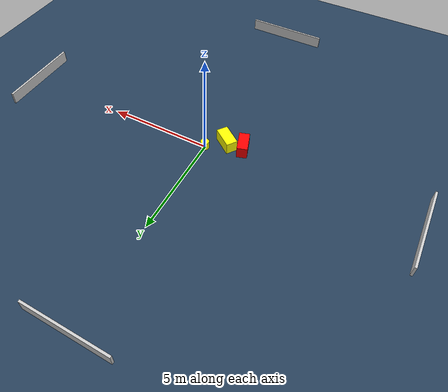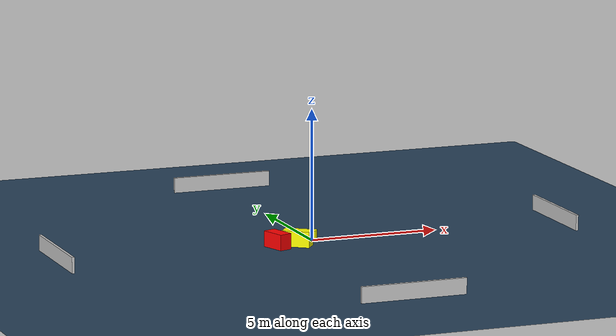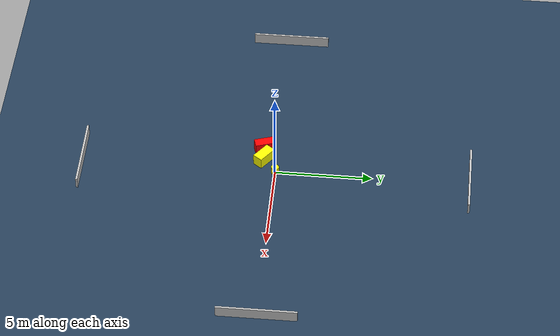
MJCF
<?xml version="1.0" ?>
<mujoco model="generated_environment">
  <option timestep="0.01" integrator="RK4" cone="elliptic"/>
  <default>
    <geom density="1"/>
  </default>
  <asset>
    <texture builtin="gradient" height="3072" name="skybox" rgb1="0.3 0.5 0.7" rgb2="0 0 0" type="skybox" width="512"/>
    <texture builtin="checker" height="300" name="groundplane" rgb1="0.2 0.3 0.4" rgb2="0.1 0.2 0.3" type="2d" width="300"/>
    <material name="groundplane" reflectance="0.2" texrepeat="5 5" texture="groundplane"/>
  </asset>
  <worldbody>
    <light dir="0 0 -1" directional="true" pos="0 0 1.5"/>
    <geom condim="3" friction="0.5 0.005 0.001" material="groundplane" name="floor" pos="0 0 0" size="0 0 0.05" type="plane"/>
    <body name="walls">
      <geom name="wall_1" condim="4" pos="-10.0 0.0 0.3" rgba="0.800000011920929 0.800000011920929 0.800000011920929 1.0" size="0.05 2.0 0.3" type="box"/>
      <geom name="wall_2" condim="4" pos="10.0 0.0 0.3" rgba="0.800000011920929 0.800000011920929 0.800000011920929 1.0" size="0.05 2.0 0.3" type="box"/>
      <geom name="wall_3" condim="4" pos="0.0 -10.0 0.3" rgba="0.800000011920929 0.800000011920929 0.800000011920929 1.0" size="2.0 0.05 0.3" type="box"/>
      <geom name="wall_4" condim="4" pos="0.0 10.0 0.3" rgba="0.800000011920929 0.800000011920929 0.800000011920929 1.0" size="2.0 0.05 0.3" type="box"/>
    </body>
    <body name="robot">
      <joint name="joint_x" type="slide" pos="0 0 0" axis="1 0 0"/>
      <joint name="joint_y" type="slide" pos="0 0 0" axis="0 1 0"/>
      <geom name="robot" type="cylinder" pos="0.0 0.0 0.2" size="0.2 0.2 0.0" mass="5.0" friction="1.0 0.005 0.0001" condim="4" rgba="1.0 1.0 0.0 1.0"/>
    </body>
    <body name="obstacle_1_movable">
      <geom name="obstacle_1_movable" condim="4" pos="-0.8220051728434838 -0.6455078340065659 0.3" euler="0 0 233.66689505308187" friction="0.0 0.005 0.001" rgba="1.0 1.0 0.0 1.0" size="0.27160740638933334 0.5272486246929617 0.3" type="box" mass="0.1"/>
      <joint type="free"/>
    </body>
    <body name="obstacle_2_static">
      <geom name="obstacle_2_static" condim="4" pos="-1.6355647596422915 -0.705902674589025 0.3" euler="0 0 288.34803439772395" friction="0.0 0.005 0.001" rgba="1.0 0.0 0.0 1.0" size="0.4989756883208945 0.24839344086668685 0.3" type="box"/>
    </body>
  </worldbody>
  <actuator>
    <motor name="actuator_x" joint="joint_x" gear="1" ctrlrange="-1 1"/>
    <motor name="actuator_y" joint="joint_y" gear="1" ctrlrange="-1 1"/>
  </actuator>
</mujoco>
